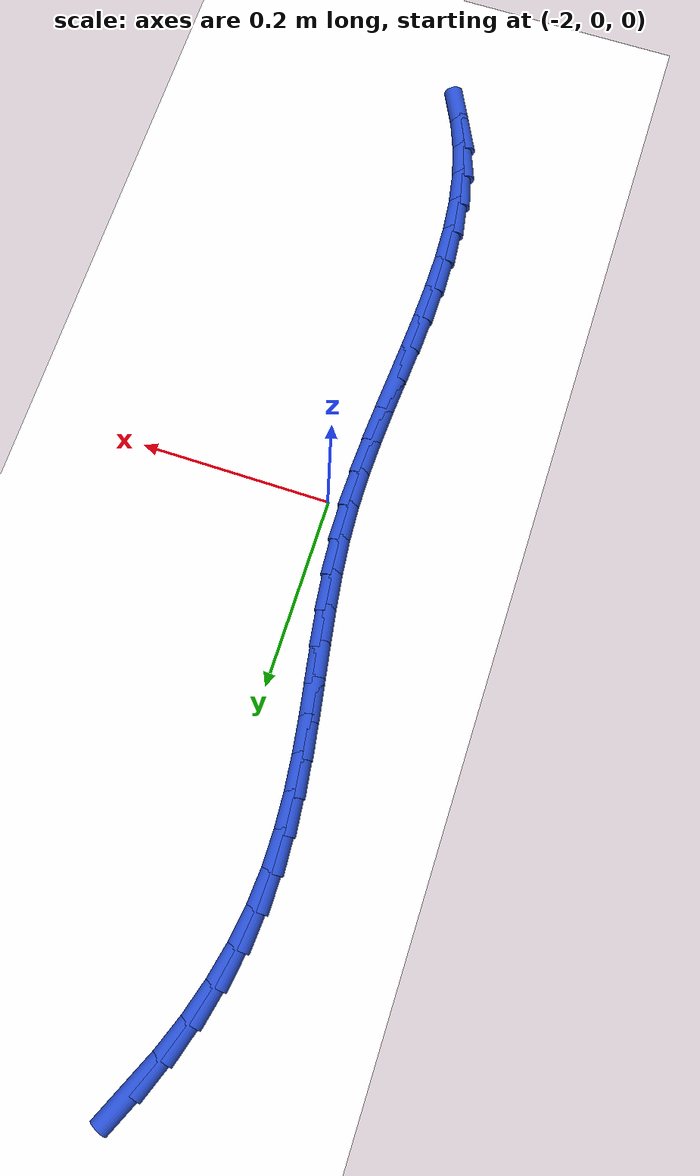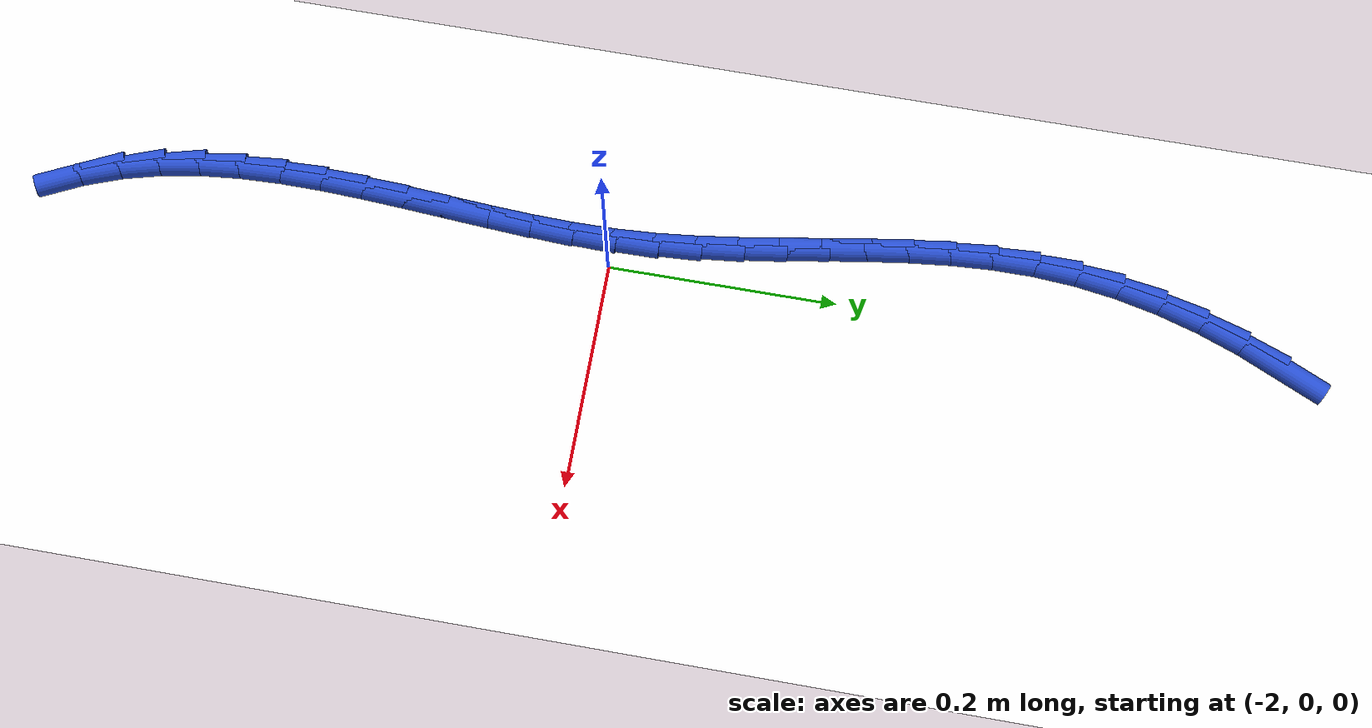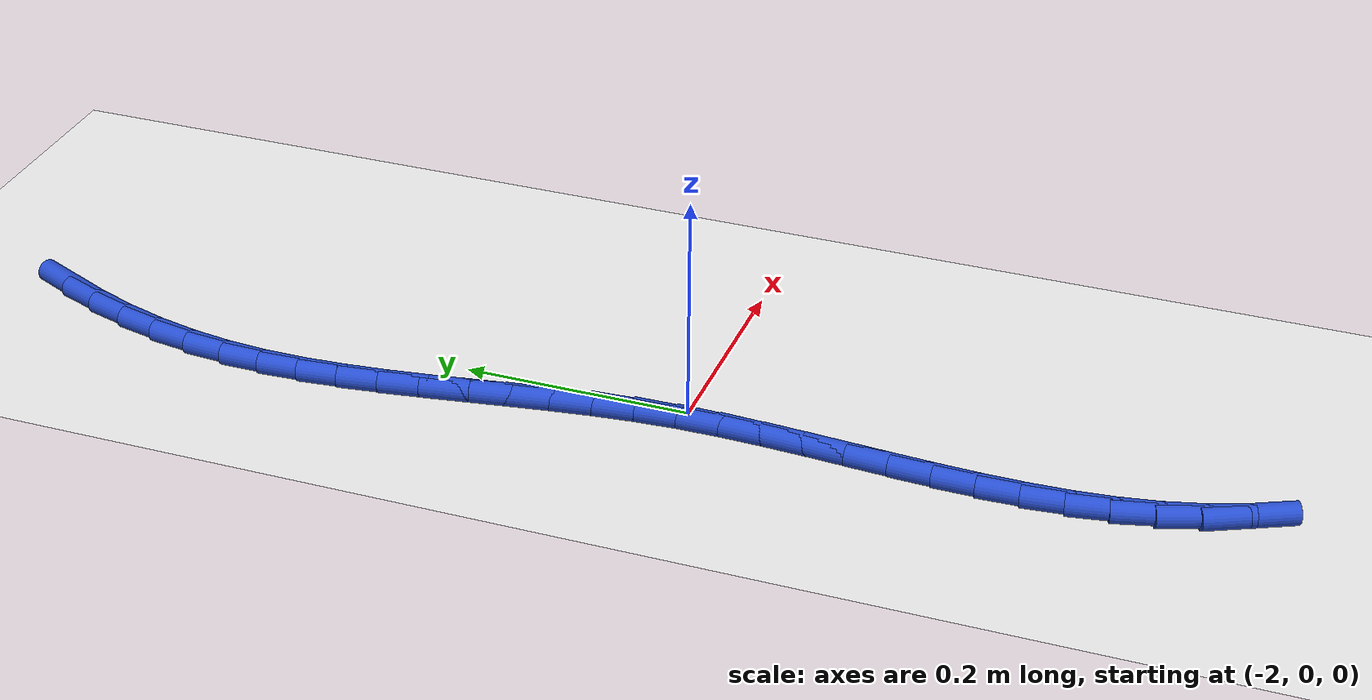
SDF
<sdf version="1.6">
 <world name="default">
  <model name="ground_plane">
   <static>1</static>
   <link name="link">
    <collision name="collision">
     <geometry><plane><normal>0 0 1</normal><size>100 100</size></plane></geometry>
     <surface><friction><ode><mu>100</mu><mu2>50</mu2></ode></friction></surface>
    </collision>
    <visual name="visual">
     <cast_shadows>0</cast_shadows>
     <geometry><plane><normal>0 0 1</normal><size>100 100</size></plane></geometry>
     <material>
      <script><uri>file://media/materials/scripts/gazebo.material</uri><name>Gazebo/WhiteGlow</name></script>
     </material>
    </visual>
   </link>
  </model>
  <model name="line">
   <link name="link_75">
    <pose>-2.005246192845508 0.5823753864608229 0.01 0 1.57 1.143531061601532</pose>
    <collision name="collision">
     <geometry><cylinder><radius>0.01</radius><length>0.08</length></cylinder></geometry>
    </collision>
    <visual name="visual">
     <material>
      <script><name>Gazebo/Blue</name><uri>file://media/materials/scripts/gazebo.material</uri></script>
     </material>
     <geometry><cylinder><radius>0.01</radius><length>0.08</length></cylinder></geometry>
    </visual>
   </link>
   <link name="link_76">
    <pose>-2.021326789085495 0.5470578844318105 0.01 0 1.57 1.2114485356860647</pose>
    <collision name="collision">
     <geometry><cylinder><radius>0.01</radius><length>0.08</length></cylinder></geometry>
    </collision>
    <visual name="visual">
     <material>
      <script><name>Gazebo/Blue</name><uri>file://media/materials/scripts/gazebo.material</uri></script>
     </material>
     <geometry><cylinder><radius>0.01</radius><length>0.08</length></cylinder></geometry>
    </visual>
   </link>
   <link name="link_77">
    <pose>-2.0349221659468184 0.5108670895489734 0.01 0 1.57 1.28030912675584</pose>
    <collision name="collision">
     <geometry><cylinder><radius>0.01</radius><length>0.08</length></cylinder></geometry>
    </collision>
    <visual name="visual">
     <material>
      <script><name>Gazebo/Blue</name><uri>file://media/materials/scripts/gazebo.material</uri></script>
     </material>
     <geometry><cylinder><radius>0.01</radius><length>0.08</length></cylinder></geometry>
    </visual>
   </link>
   <link name="link_78">
    <pose>-2.04591481474892 0.474095423079189 0.01 0 1.57 1.351180542143376</pose>
    <collision name="collision">
     <geometry><cylinder><radius>0.01</radius><length>0.08</length></cylinder></geometry>
    </collision>
    <visual name="visual">
     <material>
      <script><name>Gazebo/Blue</name><uri>file://media/materials/scripts/gazebo.material</uri></script>
     </material>
     <geometry><cylinder><radius>0.01</radius><length>0.08</length></cylinder></geometry>
    </visual>
   </link>
   <link name="link_79">
    <pose>-2.0541872268112447 0.4370353062893334 0.01 0 1.57 1.4251741477641655</pose>
    <collision name="collision">
     <geometry><cylinder><radius>0.01</radius><length>0.08</length></cylinder></geometry>
    </collision>
    <visual name="visual">
     <material>
      <script><name>Gazebo/Blue</name><uri>file://media/materials/scripts/gazebo.material</uri></script>
     </material>
     <geometry><cylinder><radius>0.01</radius><length>0.08</length></cylinder></geometry>
    </visual>
   </link>
   <link name="link_80">
    <pose>-2.0596218934532335 0.39997916044628284 0.01 0 1.57 1.5023811554506987</pose>
    <collision name="collision">
     <geometry><cylinder><radius>0.01</radius><length>0.08</length></cylinder></geometry>
    </collision>
    <visual name="visual">
     <material>
      <script><name>Gazebo/Blue</name><uri>file://media/materials/scripts/gazebo.material</uri></script>
     </material>
     <geometry><cylinder><radius>0.01</radius><length>0.08</length></cylinder></geometry>
    </visual>
   </link>
   <link name="link_81">
    <pose>-2.062142472829144 0.36319425644245973 0.01 0 1.57 -1.5678880780270534</pose>
    <collision name="collision">
     <geometry><cylinder><radius>0.01</radius><length>0.08</length></cylinder></geometry>
    </collision>
    <visual name="visual">
     <material>
      <script><name>Gazebo/Blue</name><uri>file://media/materials/scripts/gazebo.material</uri></script>
     </material>
     <geometry><cylinder><radius>0.01</radius><length>0.08</length></cylinder></geometry>
    </visual>
   </link>
   <link name="link_82">
    <pose>-2.0620364126410076 0.32672561239347575 0.01 0 1.57 -1.5086075305080375</pose>
    <collision name="collision">
     <geometry><cylinder><radius>0.01</radius><length>0.08</length></cylinder></geometry>
    </collision>
    <visual name="visual">
     <material>
      <script><name>Gazebo/Blue</name><uri>file://media/materials/scripts/gazebo.material</uri></script>
     </material>
     <geometry><cylinder><radius>0.01</radius><length>0.08</length></cylinder></geometry>
    </visual>
   </link>
   <link name="link_83">
    <pose>-2.0597808244827696 0.2905023735788642 0.01 0 1.57 -1.4623085820600459</pose>
    <collision name="collision">
     <geometry><cylinder><radius>0.01</radius><length>0.08</length></cylinder></geometry>
    </collision>
    <visual name="visual">
     <material>
      <script><name>Gazebo/Blue</name><uri>file://media/materials/scripts/gazebo.material</uri></script>
     </material>
     <geometry><cylinder><radius>0.01</radius><length>0.08</length></cylinder></geometry>
    </visual>
   </link>
   <link name="link_84">
    <pose>-2.055854458951245 0.2544526839493906 0.01 0 1.57 -1.42936372516215</pose>
    <collision name="collision">
     <geometry><cylinder><radius>0.01</radius><length>0.08</length></cylinder></geometry>
    </collision>
    <visual name="visual">
     <material>
      <script><name>Gazebo/Blue</name><uri>file://media/materials/scripts/gazebo.material</uri></script>
     </material>
     <geometry><cylinder><radius>0.01</radius><length>0.08</length></cylinder></geometry>
    </visual>
   </link>
   <link name="link_85">
    <pose>-2.05073606664325 0.21850468745581939 0.01 0 1.57 -1.4098409285907034</pose>
    <collision name="collision">
     <geometry><cylinder><radius>0.01</radius><length>0.08</length></cylinder></geometry>
    </collision>
    <visual name="visual">
     <material>
      <script><name>Gazebo/Blue</name><uri>file://media/materials/scripts/gazebo.material</uri></script>
     </material>
     <geometry><cylinder><radius>0.01</radius><length>0.08</length></cylinder></geometry>
    </visual>
   </link>
   <link name="link_86">
    <pose>-2.0449043981556008 0.18258652804891634 0.01 0 1.57 -1.4036777134952574</pose>
    <collision name="collision">
     <geometry><cylinder><radius>0.01</radius><length>0.08</length></cylinder></geometry>
    </collision>
    <visual name="visual">
     <material>
      <script><name>Gazebo/Blue</name><uri>file://media/materials/scripts/gazebo.material</uri></script>
     </material>
     <geometry><cylinder><radius>0.01</radius><length>0.08</length></cylinder></geometry>
    </visual>
   </link>
   <link name="link_87">
    <pose>-2.038838204085113 0.14662634967944627 0.01 0 1.57 -1.4107866607448105</pose>
    <collision name="collision">
     <geometry><cylinder><radius>0.01</radius><length>0.08</length></cylinder></geometry>
    </collision>
    <visual name="visual">
     <material>
      <script><name>Gazebo/Blue</name><uri>file://media/materials/scripts/gazebo.material</uri></script>
     </material>
     <geometry><cylinder><radius>0.01</radius><length>0.08</length></cylinder></geometry>
    </visual>
   </link>
   <link name="link_88">
    <pose>-2.0330162350286023 0.11055229629817373 0.01 0 1.57 -1.4310885002289455</pose>
    <collision name="collision">
     <geometry><cylinder><radius>0.01</radius><length>0.08</length></cylinder></geometry>
    </collision>
    <visual name="visual">
     <material>
      <script><name>Gazebo/Blue</name><uri>file://media/materials/scripts/gazebo.material</uri></script>
     </material>
     <geometry><cylinder><radius>0.01</radius><length>0.08</length></cylinder></geometry>
    </visual>
   </link>
   <link name="link_89">
    <pose>-2.027917241582886 0.07429251185586463 0.01 0 1.57 -1.4644751203993072</pose>
    <collision name="collision">
     <geometry><cylinder><radius>0.01</radius><length>0.08</length></cylinder></geometry>
    </collision>
    <visual name="visual">
     <material>
      <script><name>Gazebo/Blue</name><uri>file://media/materials/scripts/gazebo.material</uri></script>
     </material>
     <geometry><cylinder><radius>0.01</radius><length>0.08</length></cylinder></geometry>
    </visual>
   </link>
   <link name="link_90">
    <pose>-2.024019974344779 0.03777514030328364 0.01 0 1.57 -1.5105415427223872</pose>
    <collision name="collision">
     <geometry><cylinder><radius>0.01</radius><length>0.08</length></cylinder></geometry>
    </collision>
    <visual name="visual">
     <material>
      <script><name>Gazebo/Blue</name><uri>file://media/materials/scripts/gazebo.material</uri></script>
     </material>
     <geometry><cylinder><radius>0.01</radius><length>0.08</length></cylinder></geometry>
    </visual>
   </link>
   <link name="link_91">
    <pose>-2.0217971580875513 0.0009295095549790459 0.01 0 1.57 -1.5595133945938628</pose>
    <collision name="collision">
     <geometry><cylinder><radius>0.01</radius><length>0.08</length></cylinder></geometry>
    </collision>
    <visual name="visual">
     <material>
      <script><name>Gazebo/Blue</name><uri>file://media/materials/scripts/gazebo.material</uri></script>
     </material>
     <geometry><cylinder><radius>0.01</radius><length>0.08</length></cylinder></geometry>
    </visual>
   </link>
   <link name="link_92">
    <pose>-2.0213776746800662 -0.03624749365158587 0.01 0 1.57 1.5443457245249959</pose>
    <collision name="collision">
     <geometry><cylinder><radius>0.01</radius><length>0.08</length></cylinder></geometry>
    </collision>
    <visual name="visual">
     <material>
      <script><name>Gazebo/Blue</name><uri>file://media/materials/scripts/gazebo.material</uri></script>
     </material>
     <geometry><cylinder><radius>0.01</radius><length>0.08</length></cylinder></geometry>
    </visual>
   </link>
   <link name="link_93">
    <pose>-2.0223673888270826 -0.07365621930095168 0.01 0 1.57 1.5185972227100364</pose>
    <collision name="collision">
     <geometry><cylinder><radius>0.01</radius><length>0.08</length></cylinder></geometry>
    </collision>
    <visual name="visual">
     <material>
      <script><name>Gazebo/Blue</name><uri>file://media/materials/scripts/gazebo.material</uri></script>
     </material>
     <geometry><cylinder><radius>0.01</radius><length>0.08</length></cylinder></geometry>
    </visual>
   </link>
   <link name="link_94">
    <pose>-2.0243283164668977 -0.11118840189945713 0.01 0 1.57 1.5044668351947519</pose>
    <collision name="collision">
     <geometry><cylinder><radius>0.01</radius><length>0.08</length></cylinder></geometry>
    </collision>
    <visual name="visual">
     <material>
      <script><name>Gazebo/Blue</name><uri>file://media/materials/scripts/gazebo.material</uri></script>
     </material>
     <geometry><cylinder><radius>0.01</radius><length>0.08</length></cylinder></geometry>
    </visual>
   </link>
   <link name="link_95">
    <pose>-2.0268224735378095 -0.14873577595344034 0.01 0 1.57 1.501771174696129</pose>
    <collision name="collision">
     <geometry><cylinder><radius>0.01</radius><length>0.08</length></cylinder></geometry>
    </collision>
    <visual name="visual">
     <material>
      <script><name>Gazebo/Blue</name><uri>file://media/materials/scripts/gazebo.material</uri></script>
     </material>
     <geometry><cylinder><radius>0.01</radius><length>0.08</length></cylinder></geometry>
    </visual>
   </link>
   <link name="link_96">
    <pose>-2.029411875978115 -0.18619007596923945 0.01 0 1.57 1.5105609556623047</pose>
    <collision name="collision">
     <geometry><cylinder><radius>0.01</radius><length>0.08</length></cylinder></geometry>
    </collision>
    <visual name="visual">
     <material>
      <script><name>Gazebo/Blue</name><uri>file://media/materials/scripts/gazebo.material</uri></script>
     </material>
     <geometry><cylinder><radius>0.01</radius><length>0.08</length></cylinder></geometry>
    </visual>
   </link>
   <link name="link_97">
    <pose>-2.03165853972611 -0.22344303645319244 0.01 0 1.57 1.5311363582855888</pose>
    <collision name="collision">
     <geometry><cylinder><radius>0.01</radius><length>0.08</length></cylinder></geometry>
    </collision>
    <visual name="visual">
     <material>
      <script><name>Gazebo/Blue</name><uri>file://media/materials/scripts/gazebo.material</uri></script>
     </material>
     <geometry><cylinder><radius>0.01</radius><length>0.08</length></cylinder></geometry>
    </visual>
   </link>
   <link name="link_98">
    <pose>-2.033124480720094 -0.2603863919116383 0.01 0 1.57 1.5640276171403984</pose>
    <collision name="collision">
     <geometry><cylinder><radius>0.01</radius><length>0.08</length></cylinder></geometry>
    </collision>
    <visual name="visual">
     <material>
      <script><name>Gazebo/Blue</name><uri>file://media/materials/scripts/gazebo.material</uri></script>
     </material>
     <geometry><cylinder><radius>0.01</radius><length>0.08</length></cylinder></geometry>
    </visual>
   </link>
   <link name="link_99">
    <pose>-2.0333717148983625 -0.29691187685091347 0.01 0 1.57 -1.5316640308830793</pose>
    <collision name="collision">
     <geometry><cylinder><radius>0.01</radius><length>0.08</length></cylinder></geometry>
    </collision>
    <visual name="visual">
     <material>
      <script><name>Gazebo/Blue</name><uri>file://media/materials/scripts/gazebo.material</uri></script>
     </material>
     <geometry><cylinder><radius>0.01</radius><length>0.08</length></cylinder></geometry>
    </visual>
   </link>
   <link name="link_100">
    <pose>-2.0319622581992127 -0.33291122577735677 0.01 0 1.57 -1.4720338136885474</pose>
    <collision name="collision">
     <geometry><cylinder><radius>0.01</radius><length>0.08</length></cylinder></geometry>
    </collision>
    <visual name="visual">
     <material>
      <script><name>Gazebo/Blue</name><uri>file://media/materials/scripts/gazebo.material</uri></script>
     </material>
     <geometry><cylinder><radius>0.01</radius><length>0.08</length></cylinder></geometry>
    </visual>
   </link>
   <link name="link_101">
    <pose>-2.028458126560943 -0.36827617319730654 0.01 0 1.57 -1.39817031352223</pose>
    <collision name="collision">
     <geometry><cylinder><radius>0.01</radius><length>0.08</length></cylinder></geometry>
    </collision>
    <visual name="visual">
     <material>
      <script><name>Gazebo/Blue</name><uri>file://media/materials/scripts/gazebo.material</uri></script>
     </material>
     <geometry><cylinder><radius>0.01</radius><length>0.08</length></cylinder></geometry>
    </visual>
   </link>
   <link name="link_102">
    <pose>-2.0224213359218495 -0.4028984536171005 0.01 0 1.57 -1.3101458078404198</pose>
    <collision name="collision">
     <geometry><cylinder><radius>0.01</radius><length>0.08</length></cylinder></geometry>
    </collision>
    <visual name="visual">
     <material>
      <script><name>Gazebo/Blue</name><uri>file://media/materials/scripts/gazebo.material</uri></script>
     </material>
     <geometry><cylinder><radius>0.01</radius><length>0.08</length></cylinder></geometry>
    </visual>
   </link>
   <link name="link_103">
    <pose>-2.01341390222023 -0.4366698015430777 0.01 0 1.57 -1.2105031919849412</pose>
    <collision name="collision">
     <geometry><cylinder><radius>0.01</radius><length>0.08</length></cylinder></geometry>
    </collision>
    <visual name="visual">
     <material>
      <script><name>Gazebo/Blue</name><uri>file://media/materials/scripts/gazebo.material</uri></script>
     </material>
     <geometry><cylinder><radius>0.01</radius><length>0.08</length></cylinder></geometry>
    </visual>
   </link>
   <link name="link_104">
    <pose>-2.001050128771909 -0.4694878025669653 0.01 0 1.57 -1.113983527603184</pose>
    <collision name="collision">
     <geometry><cylinder><radius>0.01</radius><length>0.08</length></cylinder></geometry>
    </collision>
    <visual name="visual">
     <material>
      <script><name>Gazebo/Blue</name><uri>file://media/materials/scripts/gazebo.material</uri></script>
     </material>
     <geometry><cylinder><radius>0.01</radius><length>0.08</length></cylinder></geometry>
    </visual>
   </link>
  </model>
 </world>
</sdf>
